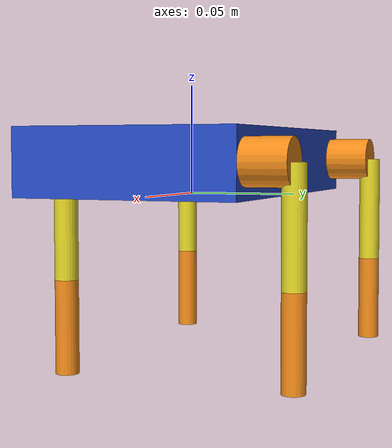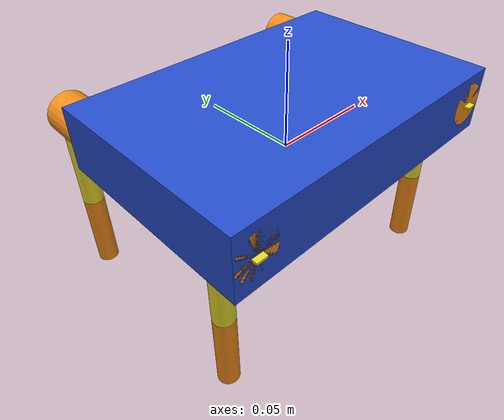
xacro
<?xml version="1.0"?>
<robot name="my_robot" xmlns:xacro="http://www.ros.org/wiki/xacro">

    <xacro:include filename="leg.xacro" />

    <xacro:property name="base_length" value="0.15" />
    <xacro:property name="base_width" value="0.1" />
    <xacro:property name="base_height" value="0.03" />

    <!-- Function: base-leg joint -->
    <xacro:macro name="base_leg_joint" params="prefix x y">
        <joint name="base_${prefix}_leg_joint" type="fixed">
            <parent link="base_link" />
            <child link="${prefix}_base_link" />
            <origin xyz="${x} ${y} ${base_height/2.0}" rpy="0 0 0" />
        </joint>
    </xacro:macro>

    <!-- Create base link -->
    <link name="base_link">
        <visual>
            <geometry>
                <box size="${base_length} ${base_width} ${base_height}" />
            </geometry>
            <origin xyz="0 0 ${base_height / 2.0}" rpy="0 0 0" />
            <material name="blue" />
        </visual>
        <collision>
            <geometry>
                <box size="${base_length} ${base_width} ${base_height}" />
            </geometry>
            <origin xyz="0 0 ${base_height / 2.0}" rpy="0 0 0" />
        </collision>
        <xacro:box_inertia m="5.0" l="${2*base_length}" w="${2*base_width}" h="${2*base_height}"
                           xyz="0 0 ${base_height / 2.0}" rpy="0 0 0" />
    </link>

    <!-- Create legs using function in 'leg.xacro' -->
    <xacro:generate_leg prefix="fr" />
    <xacro:generate_leg prefix="fl" />
    <xacro:generate_leg prefix="rr" />
    <xacro:generate_leg prefix="rl" />

    <!-- Connect legs to base_link -->
    <xacro:base_leg_joint prefix="fr" x="${-0.01+base_length/2}" y="${-base_width/2}" />
    <xacro:base_leg_joint prefix="fl" x="${-0.01+base_length/2}" y="${base_width/2}" />
    <xacro:base_leg_joint prefix="rr" x="${0.01-base_length/2}" y="${-base_width/2}" />
    <xacro:base_leg_joint prefix="rl" x="${0.01-base_length/2}" y="${base_width/2}" />

</robot>

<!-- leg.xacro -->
<robot xmlns:xacro="http://www.ros.org/wiki/xacro">

    <!-- Variables -->
    <xacro:property name="base_leg_length" value="0.005" />
    <xacro:property name="base_leg_width" value="0.005" />
    <xacro:property name="base_leg_height" value="0.001" />
    <xacro:property name="shoulder_length" value="0.02" />
    <xacro:property name="shoulder_radius" value="0.01" />
    <xacro:property name="thigh_radius" value="0.005" />
    <xacro:property name="thigh_length" value="0.05" />
    <xacro:property name="shank_radius" value="0.005" />
    <xacro:property name="shank_length" value="0.04" />

    <!-- Function: Create base link -->
    <xacro:macro name="base_link" params="prefix">
        <link name="${prefix}_base_link">
            <visual>
                <geometry>
                    <box size="${base_leg_length} ${base_leg_width} ${base_leg_height}"/>
                </geometry>
                <origin xyz="0 0 0" rpy="0 0 0" />
                <material name="yellow" />
            </visual>
        </link>
    </xacro:macro>

    <!-- Function: Create shoulder link -->
    <xacro:macro name="shoulder_link" params="prefix">
        <link name="${prefix}_shoulder_link">
            <visual>
                <geometry>
                    <cylinder radius="${shoulder_radius}" length="${shoulder_length}" />
                </geometry>
                <origin xyz="0 0 ${-shoulder_length/2}" rpy="0 0 0" />
                <material name="orange" />
            </visual>
        </link>
    </xacro:macro>

    <!-- Function: Create upper leg -->
    <xacro:macro name="thigh_link" params="prefix">
        <link name="${prefix}_thigh_link">
            <visual>
                <geometry>
                    <cylinder radius="${thigh_radius}" length="${thigh_length}" />
                </geometry>
                <origin xyz="0 0 ${thigh_length / 2.0}" rpy="0 0 0" />
                <material name="yellow" />
            </visual>
        </link>
    </xacro:macro>

    <!-- Function: Create lower leg -->
    <xacro:macro name="shank_link" params="prefix">
        <link name="${prefix}_shank_link">
            <visual>
                <geometry>
                    <cylinder radius="${shank_radius}" length="${shank_length}" />
                </geometry>
                <origin xyz="0 0 ${shank_length / 2.0}" rpy="0 0 0" />
                <material name="orange" />
            </visual>
        </link>
    </xacro:macro>

    <!-- Function: shoulder joint -->
    <xacro:macro name="shoulder_joint" params="prefix">
        <joint name="${prefix}_shoulder_joint" type="revolute">
            <parent link="${prefix}_base_link" />
            <child link="${prefix}_shoulder_link" />
            <origin xyz="0 0 ${base_leg_height/2}" rpy="${pi/2} ${pi/2} 0" />
            <axis xyz="0 1 0" />
            <limit lower="${-pi/2}" upper="${pi/2}" effort="100" velocity="100" />
        </joint>
    </xacro:macro>

    <!-- Function: elbow joint -->
    <xacro:macro name="elbow_joint" params="prefix">
        <joint name="${prefix}_elbow_joint" type="revolute">
            <parent link="${prefix}_shoulder_link" />
            <child link="${prefix}_thigh_link" />
            <origin xyz="0 0 ${-shoulder_length}" rpy="0 ${pi/2} 0" />
            <axis xyz="1 0 0" />
            <limit lower="${-pi/3}" upper="${pi/3}" effort="100" velocity="100" />
        </joint>
    </xacro:macro>

    <!-- Function: wrist joint -->
    <xacro:macro name="wrist_joint" params="prefix">
        <joint name="${prefix}_wrist_joint" type="revolute">
            <parent link="${prefix}_thigh_link" />
            <child link="${prefix}_shank_link" />
            <origin xyz="0 0 ${thigh_length}" rpy="0 0 0" />
            <axis xyz="1 0 0" />
            <limit lower="0" upper="${3*pi/4}" effort="100" velocity="100" />
        </joint>
    </xacro:macro>

    <!-- Function: Create full leg with joints -->
    <xacro:macro name="generate_leg" params="prefix">
        <xacro:base_link prefix="${prefix}" />
        <xacro:shoulder_link prefix="${prefix}" />
        <xacro:thigh_link prefix="${prefix}" />
        <xacro:shank_link prefix="${prefix}" />
        <xacro:shoulder_joint prefix="${prefix}" />
        <xacro:elbow_joint prefix="${prefix}" />
        <xacro:wrist_joint prefix="${prefix}" />
    </xacro:macro>

</robot>
